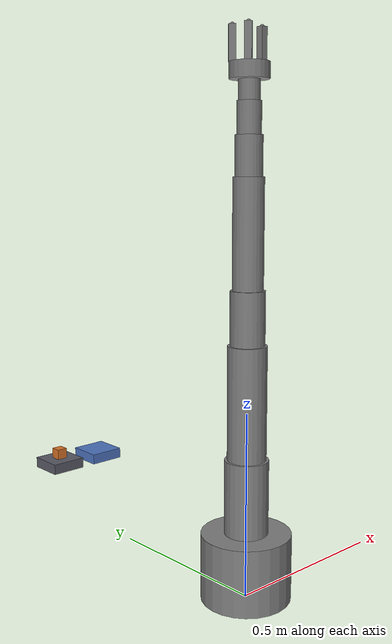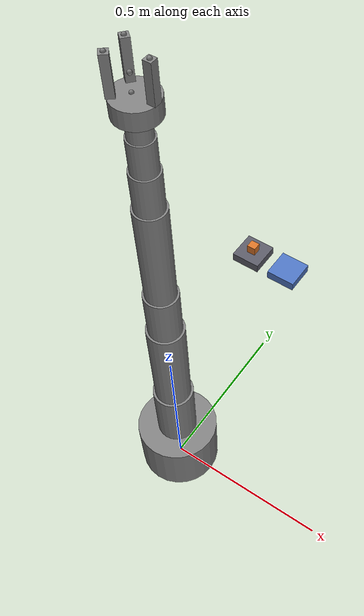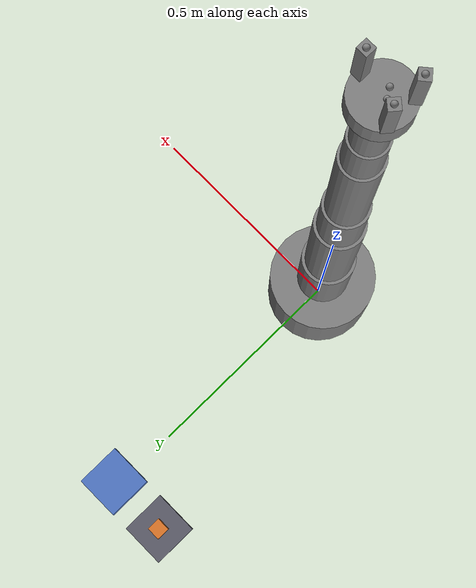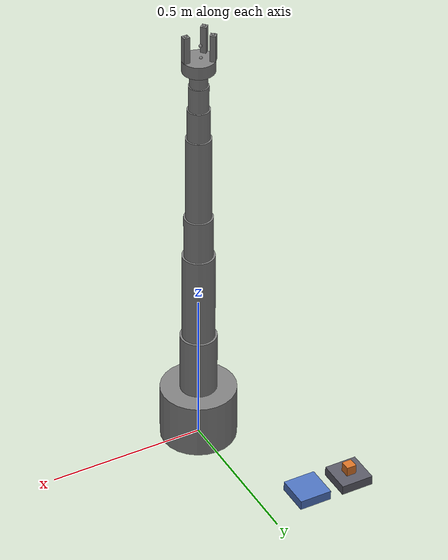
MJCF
<mujoco model="zoo_hand_arm">
  <compiler angle="radian" meshdir="C:\Users\hocke\GitHub\rigby-g06\any-robot\assets\general\zoo\zoo_hand_arm" texturedir="C:\Users\hocke\GitHub\rigby-g06\any-robot\assets\general\zoo\zoo_hand_arm" />

  <worldbody>
    <body name="base">
      <inertial pos="0 0 0.09" quat="0.5 0.5 -0.5 0.5" mass="9" diaginertia="0.0648 0.0567 0.0567" />
      <geom size="0.12 0.09" pos="0 0 0.09" type="cylinder" />
      <site name="robot_base" pos="0 0 0" />
      <body name="link_0" pos="0 0 0.18">
        <inertial pos="0 0 0.1" mass="1.9023" diaginertia="0.00794082 0.00794082 0.00319966" />
        <joint name="joint_0" pos="0 0 0" axis="0 0 1" range="-2.85 2.85" actuatorfrcrange="-170 170" />
        <geom size="0.058 0.1" pos="0 0 0.1" type="cylinder" />
        <body name="link_1" pos="0 0 0.2">
          <inertial pos="0 0 0.15" mass="2.20971" diaginertia="0.0180119 0.0180119 0.00287824" />
          <joint name="joint_1" pos="0 0 0" axis="0 1 0" range="-2.85 2.85" actuatorfrcrange="-170 170" />
          <geom size="0.05104 0.15" pos="0 0 0.15" type="cylinder" />
          <body name="link_2" pos="0 0 0.3">
            <inertial pos="0 0 0.07" mass="0.798559" diaginertia="0.00170706 0.00170706 0.0008055" />
            <joint name="joint_2" pos="0 0 0" axis="0 0 1" range="-2.85 2.85" actuatorfrcrange="-170 170" />
            <geom size="0.044915 0.07" pos="0 0 0.07" type="cylinder" />
            <body name="link_3" pos="0 0 0.14">
              <inertial pos="0 0 0.14" mass="1.23681" diaginertia="0.00856353 0.00856353 0.00096611" />
              <joint name="joint_3" pos="0 0 0" axis="0 1 0" range="-2.85 2.85" actuatorfrcrange="-170 170" />
              <geom size="0.039525 0.14" pos="0 0 0.14" type="cylinder" />
              <body name="link_4" pos="0 0 0.28">
                <inertial pos="0 0 0.05" mass="0.342066" diaginertia="0.00038851 0.00038851 0.00020692" />
                <joint name="joint_4" pos="0 0 0" axis="0 0 1" range="-2.85 2.85" actuatorfrcrange="-170 170" />
                <geom size="0.034782 0.05" pos="0 0 0.05" type="cylinder" />
                <body name="link_5" pos="0 0 0.1">
                  <inertial pos="0 0 0.04" mass="0.25" diaginertia="0.00019189 0.00019189 0.00011711" />
                  <joint name="joint_5" pos="0 0 0" axis="0 1 0" range="-2.85 2.85" actuatorfrcrange="-170 170" />
                  <geom size="0.030608 0.04" pos="0 0 0.04" type="cylinder" />
                  <body name="link_6" pos="0 0 0.08">
                    <inertial pos="0 0 0.025" mass="0.25" diaginertia="9.743e-05 9.743e-05 9.069e-05" />
                    <joint name="joint_6" pos="0 0 0" axis="0 0 1" range="-2.85 2.85" actuatorfrcrange="-170 170" />
                    <geom size="0.026935 0.025" pos="0 0 0.025" type="cylinder" />
                    <body name="palm" pos="0 0 0.05">
                      <inertial pos="0 0 0.02" quat="0.5 0.5 -0.5 0.5" mass="0.4" diaginertia="0.0005 0.00030333 0.00030333" />
                      <geom size="0.05 0.02" pos="0 0 0.02" type="cylinder" />
                      <site name="palm_grasp_point" pos="-0.00540243 -9.0523e-10 0.0809031" />
                      <site name="palm_grasp_center" pos="-0.00744933 0 0.04" />
                      <site name="palm_wrist" pos="0 0 0" />
                      <body name="digit_0" pos="0.042 0 0.04">
                        <inertial pos="0 0 0.0425" mass="0.05" diaginertia="3.145e-05 3.145e-05 2.7e-06" />
                        <joint name="digit_0_flex" pos="0 0 0" axis="0 -1 0" range="0 0.55" actuatorfrcrange="-18 18" />
                        <geom size="0.009 0.009 0.0425" pos="0 0 0.0425" type="box" />
                        <site name="palm_tip" pos="0 0 0.085" />
                        <site name="palm_contact_0" pos="0 0 0.085" />
                      </body>
                      <body name="digit_1" pos="-0.032174 0.026997 0.04" quat="0.34202 0 0 0.939693">
                        <inertial pos="0 0 0.0425" mass="0.05" diaginertia="3.145e-05 3.145e-05 2.7e-06" />
                        <joint name="digit_1_flex" pos="0 0 0" axis="0 -1 0" range="0 0.55" actuatorfrcrange="-18 18" />
                        <geom size="0.009 0.009 0.0425" pos="0 0 0.0425" type="box" />
                        <site name="palm_contact_1" pos="0 0 0.085" />
                      </body>
                      <body name="digit_2" pos="-0.032174 -0.026997 0.04" quat="-0.34202 0 0 0.939693">
                        <inertial pos="0 0 0.0425" mass="0.05" diaginertia="3.145e-05 3.145e-05 2.7e-06" />
                        <joint name="digit_2_flex" pos="0 0 0" axis="0 -1 0" range="0 0.55" actuatorfrcrange="-18 18" />
                        <geom size="0.009 0.009 0.0425" pos="0 0 0.0425" type="box" />
                        <site name="palm_contact_2" pos="0 0 0.085" />
                      </body>
                    </body>
                  </body>
                </body>
              </body>
            </body>
          </body>
        </body>
      </body>
    </body>
  <body name="env_fixture_bench" pos="-0.150000 0.650000 0.245000"><geom name="env_fixture_bench_geom" type="box" size="0.050000 0.050000 0.015000" rgba="0.3500 0.3500 0.4000 1.0000" solref="0.002 1" solimp="0.95 0.99 0.001" /></body><body name="env_fixture_platform" pos="-0.010000 0.650000 0.245000"><geom name="env_fixture_platform_geom" type="box" size="0.050000 0.050000 0.015000" rgba="0.3000 0.4500 0.7500 1.0000" solref="0.002 1" solimp="0.95 0.99 0.001" /></body><body name="scene_block" pos="-0.150000 0.650000 0.275000"><freejoint name="scene_block_free" /><geom name="scene_block_geom" type="box" size="0.015000 0.015000 0.015000" mass="0.008640" friction="1.400 0.03 0.001" rgba="0.8500 0.4500 0.1500 1.0000" condim="4" solref="0.002 1" solimp="0.95 0.99 0.001" priority="1" /><site name="scene_block_center" pos="0 0 0" size="0.002" /></body></worldbody>

  <actuator>
    <general name="joint_0_motor" joint="joint_0" ctrllimited="true" ctrlrange="-170 170" forcelimited="true" forcerange="-170 170" />
    <general name="joint_1_motor" joint="joint_1" ctrllimited="true" ctrlrange="-170 170" forcelimited="true" forcerange="-170 170" />
    <general name="joint_2_motor" joint="joint_2" ctrllimited="true" ctrlrange="-170 170" forcelimited="true" forcerange="-170 170" />
    <general name="joint_3_motor" joint="joint_3" ctrllimited="true" ctrlrange="-170 170" forcelimited="true" forcerange="-170 170" />
    <general name="joint_4_motor" joint="joint_4" ctrllimited="true" ctrlrange="-170 170" forcelimited="true" forcerange="-170 170" />
    <general name="joint_5_motor" joint="joint_5" ctrllimited="true" ctrlrange="-170 170" forcelimited="true" forcerange="-170 170" />
    <general name="joint_6_motor" joint="joint_6" ctrllimited="true" ctrlrange="-170 170" forcelimited="true" forcerange="-170 170" />
    <general name="digit_0_flex_motor" joint="digit_0_flex" ctrllimited="true" ctrlrange="-18 18" forcelimited="true" forcerange="-18 18" />
    <general name="digit_1_flex_motor" joint="digit_1_flex" ctrllimited="true" ctrlrange="-18 18" forcelimited="true" forcerange="-18 18" />
    <general name="digit_2_flex_motor" joint="digit_2_flex" ctrllimited="true" ctrlrange="-18 18" forcelimited="true" forcerange="-18 18" />
  </actuator>
</mujoco>
